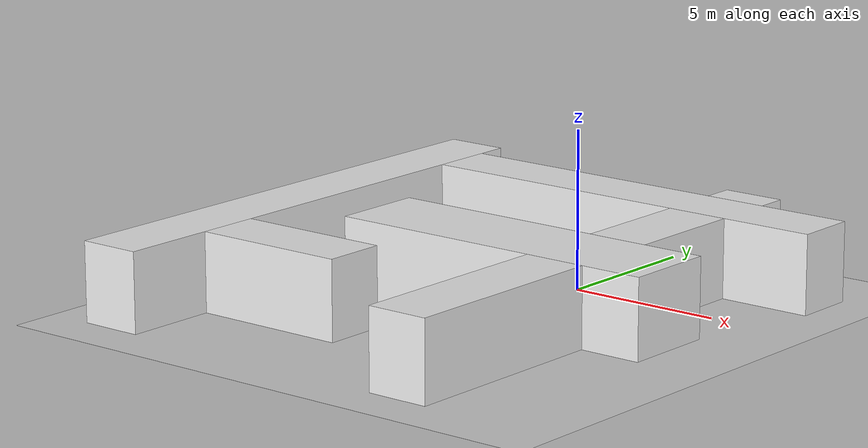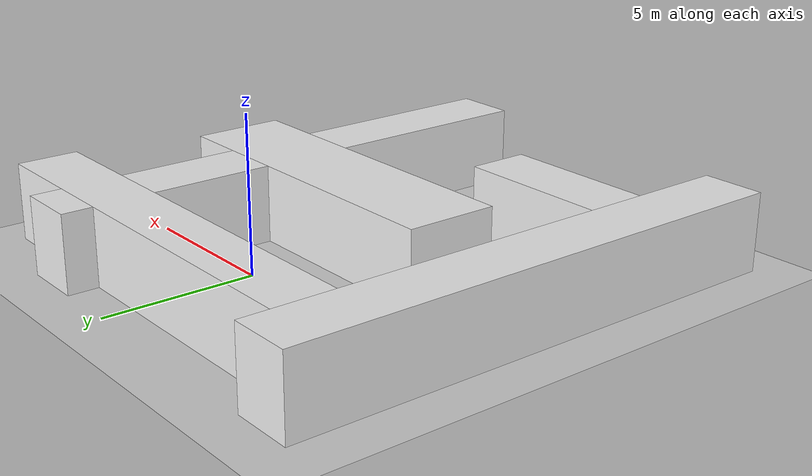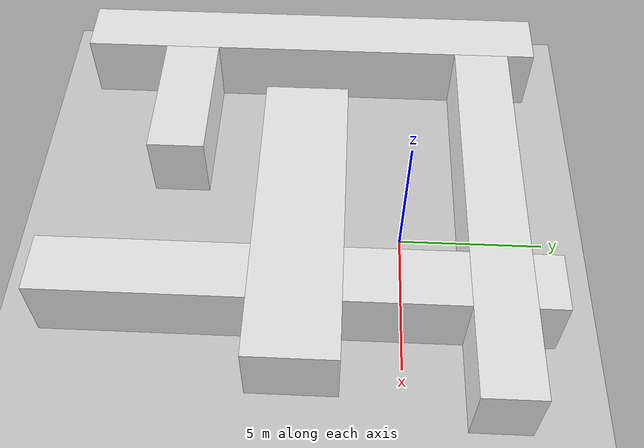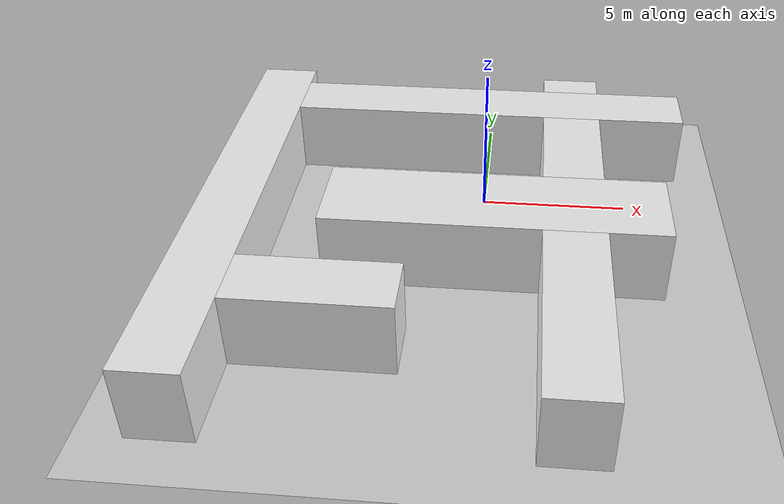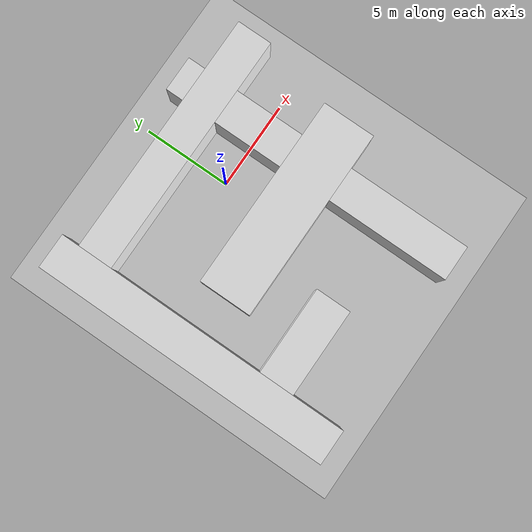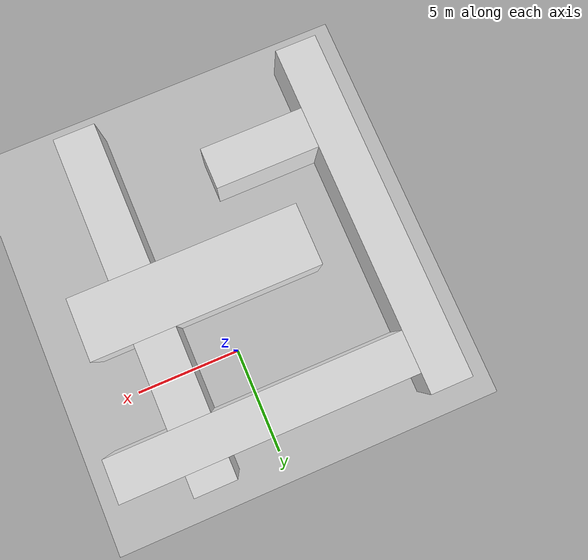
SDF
<?xml version='1.0' encoding='utf-8'?>
<sdf version="1.4"><world name="default"><include><uri>model://sun</uri></include><include><uri>model://ground_plane</uri></include><model name="myModel"><static>1</static><link name="Wall_0"><collision name="Wall_0_Collision"><geometry><box><size>-2 -17 2.5</size></box></geometry><pose>0 0 1.25 0 -0 0</pose></collision><visual name="Wall_0_Visual"><pose>0 0 1.25 0 -0 0</pose><geometry><box><size>-2 -17 2.5</size></box></geometry><material><script><uri>file://media/materials/scripts/gazebo.material</uri><name>Gazebo/White</name></script></material></visual><velocity_decay><linear>0</linear><angular>0</angular></velocity_decay><pose>-8.0 -3.5 0 0 -0 0</pose></link><link name="Wall_1"><collision name="Wall_1_Collision"><geometry><box><size>-2 -5 2.5</size></box></geometry><pose>0 0 1.25 0 -0 0</pose></collision><visual name="Wall_1_Visual"><pose>0 0 1.25 0 -0 0</pose><geometry><box><size>-2 -5 2.5</size></box></geometry><material><script><uri>file://media/materials/scripts/gazebo.material</uri><name>Gazebo/White</name></script></material></visual><velocity_decay><linear>0</linear><angular>0</angular></velocity_decay><pose>-4.5 -8.0 0 0 -0 1.5707963267948966</pose></link><link name="Wall_2"><collision name="Wall_2_Collision"><geometry><box><size>-2 -14 2.5</size></box></geometry><pose>0 0 1.25 0 -0 0</pose></collision><visual name="Wall_2_Visual"><pose>0 0 1.25 0 -0 0</pose><geometry><box><size>-2 -14 2.5</size></box></geometry><material><script><uri>file://media/materials/scripts/gazebo.material</uri><name>Gazebo/White</name></script></material></visual><velocity_decay><linear>0</linear><angular>0</angular></velocity_decay><pose>0.0 3.0 0 0 -0 1.5707963267948966</pose></link><link name="Wall_3"><collision name="Wall_3_Collision"><geometry><box><size>-3 -11 2.5</size></box></geometry><pose>0 0 1.25 0 -0 0</pose></collision><visual name="Wall_3_Visual"><pose>0 0 1.25 0 -0 0</pose><geometry><box><size>-3 -11 2.5</size></box></geometry><material><script><uri>file://media/materials/scripts/gazebo.material</uri><name>Gazebo/White</name></script></material></visual><velocity_decay><linear>0</linear><angular>0</angular></velocity_decay><pose>0.5 -3.5 0 0 -0 1.5707963267948966</pose></link><link name="Wall_4"><collision name="Wall_4_Collision"><geometry><box><size>-2 -7 2.5</size></box></geometry><pose>0 0 1.25 0 -0 0</pose></collision><visual name="Wall_4_Visual"><pose>0 0 1.25 0 -0 0</pose><geometry><box><size>-2 -7 2.5</size></box></geometry><material><script><uri>file://media/materials/scripts/gazebo.material</uri><name>Gazebo/White</name></script></material></visual><velocity_decay><linear>0</linear><angular>0</angular></velocity_decay><pose>3.0 -8.5 0 0 -0 0</pose></link><link name="Wall_5"><collision name="Wall_5_Collision"><geometry><box><size>-2 -4 2.5</size></box></geometry><pose>0 0 1.25 0 -0 0</pose></collision><visual name="Wall_5_Visual"><pose>0 0 1.25 0 -0 0</pose><geometry><box><size>-2 -4 2.5</size></box></geometry><material><script><uri>file://media/materials/scripts/gazebo.material</uri><name>Gazebo/White</name></script></material></visual><velocity_decay><linear>0</linear><angular>0</angular></velocity_decay><pose>3.0 0.0 0 0 -0 0</pose></link><link name="Wall_6"><collision name="Wall_6_Collision"><geometry><box><size>-1 -2 2.5</size></box></geometry><pose>0 0 1.25 0 -0 0</pose></collision><visual name="Wall_6_Visual"><pose>0 0 1.25 0 -0 0</pose><geometry><box><size>-1 -2 2.5</size></box></geometry><material><script><uri>file://media/materials/scripts/gazebo.material</uri><name>Gazebo/White</name></script></material></visual><velocity_decay><linear>0</linear><angular>0</angular></velocity_decay><pose>3.0 4.5 0 0 -0 1.5707963267948966</pose></link></model></world></sdf>
